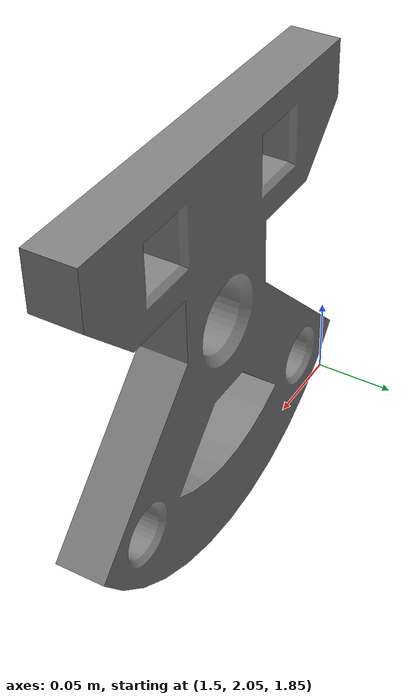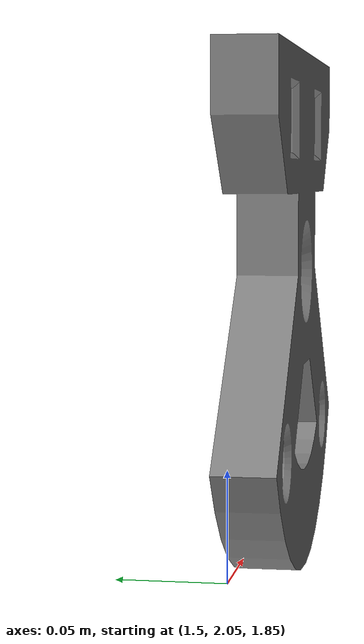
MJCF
<mujoco model="CranfieldBase-2">
  <asset>
    <mesh
      file="../../../../../assets/cranfield_assembly_benchmark/assets/CranfieldBase-2/CranfieldBase-2.obj"
      scale="0.001 0.001 0.001">
      <plugin instance="sdf" />
    </mesh>
  </asset>
  <worldbody>
    <body name="CranfieldBase-2" pos="2 2 2">
      <freejoint />
      <geom type="mesh" mesh="CranfieldBase-2" size="0.01">
        <plugin instance="sdf" />
      </geom>
    </body>
  </worldbody>
</mujoco>
